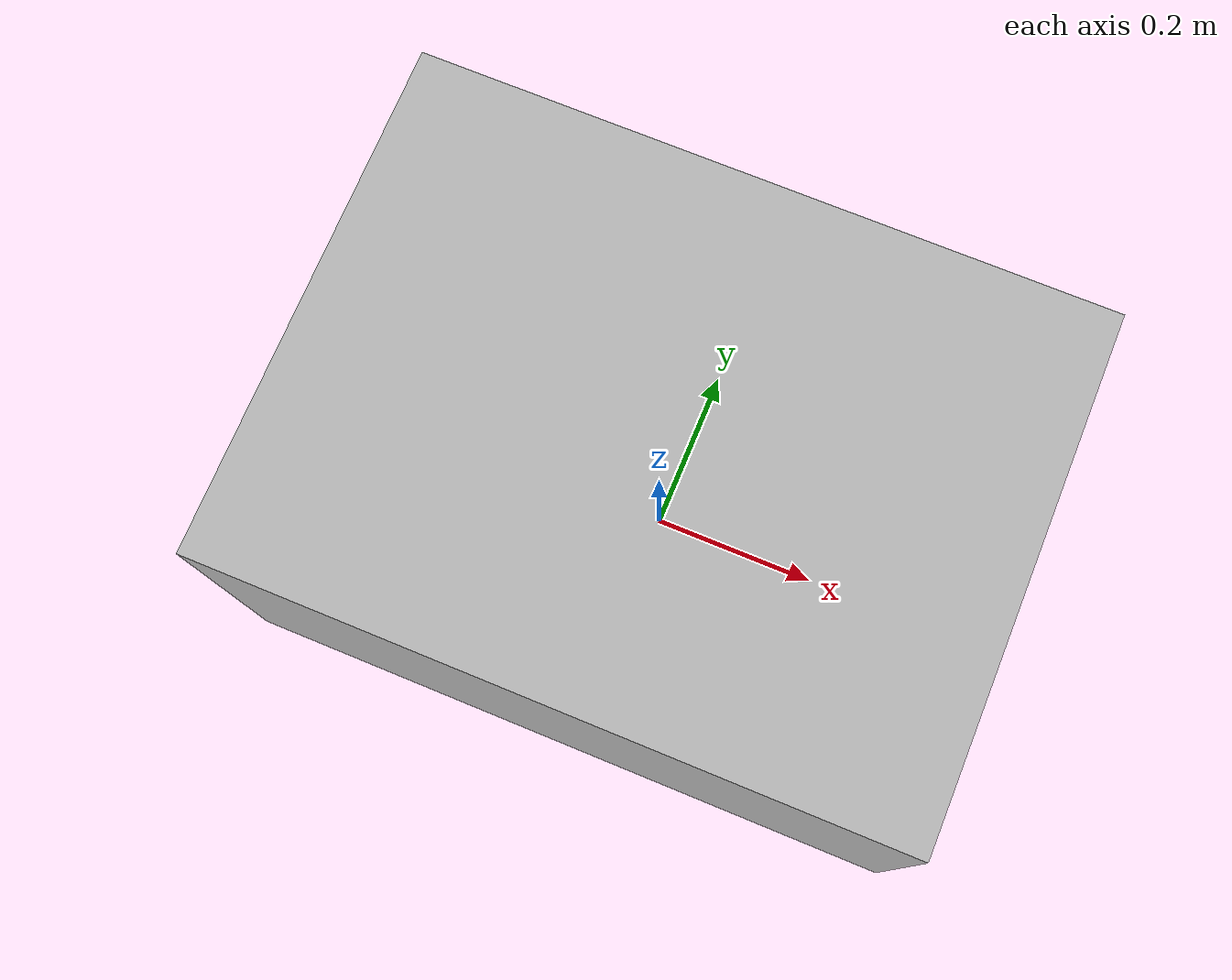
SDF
<?xml version="1.0"?>
<sdf version="1.9">
  <model name="sample_cache">
    <static>true</static>
    <link name="link">
      <pose>0 0 0.2 0 0 0</pose>
      <collision name="collision">
        <geometry><box><size>0.8 0.6 0.4</size></box></geometry>
      </collision>
      <visual name="visual">
        <geometry><box><size>0.8 0.6 0.4</size></box></geometry>
      </visual>
    </link>
  </model>
</sdf>
